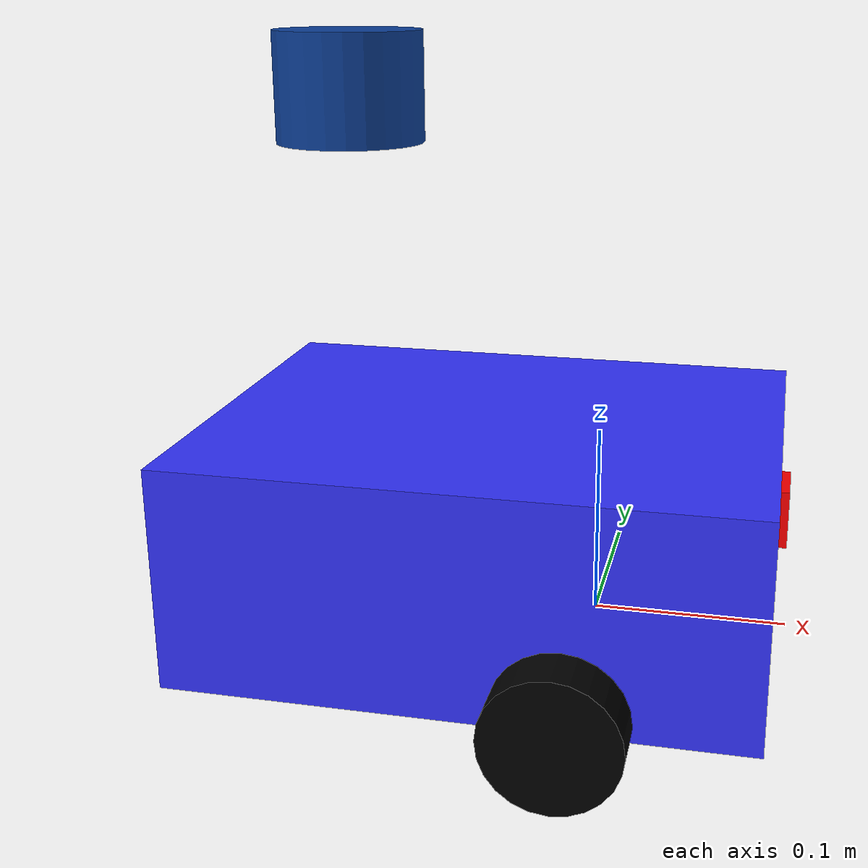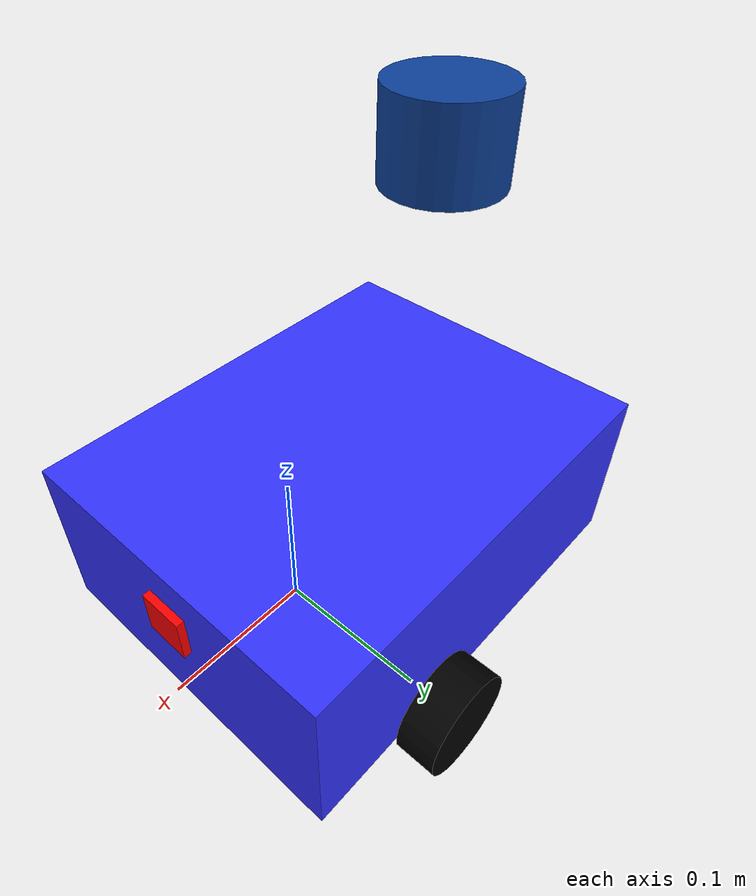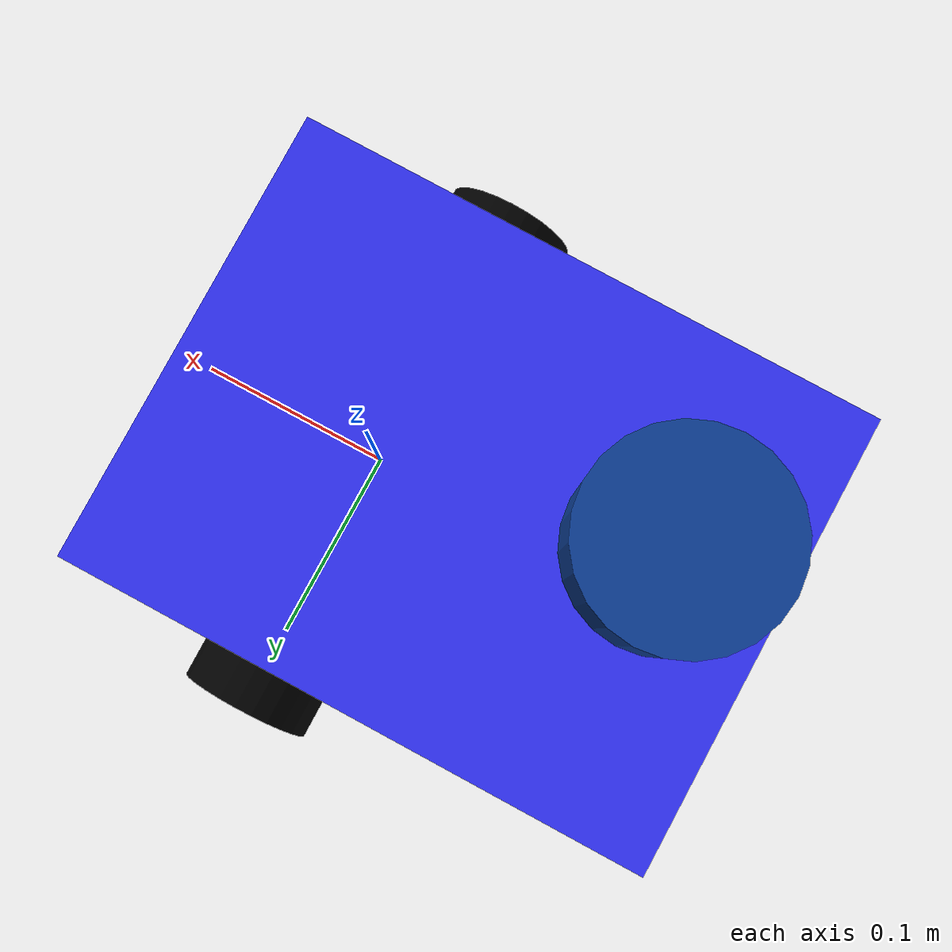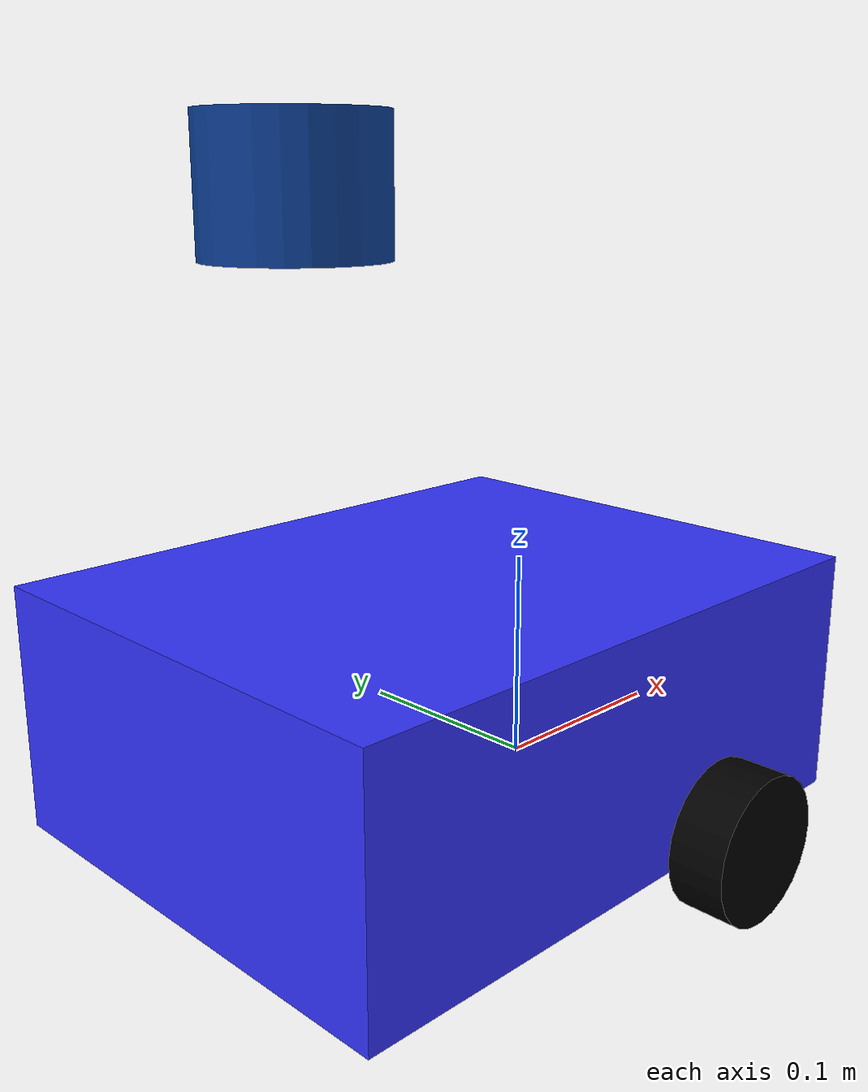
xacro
<?xml version="1.0"?>
<robot xmlns:xacro="http://www.ros.org/wiki/xacro"  name="robot">

   <xacro:arg name="use_ros2_control" default="true"/>
   <xacro:arg name="sim_mode" default="false"/>

   <xacro:include filename="robot_core.xacro" />

   <xacro:if value="$(arg use_ros2_control)">
       <xacro:include filename="ros2_control.xacro"/>
   </xacro:if>

   <xacro:unless value="$(arg use_ros2_control)">
       <xacro:include filename="gazebo_control.xacro"/>
   </xacro:unless>

   <xacro:include filename="lidar.xacro"/>

   <xacro:include filename="depth_camera.xacro"/>

</robot>

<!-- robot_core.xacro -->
<robot xmlns:xacro="http://www.ros.org/wiki/xacro" >

    <xacro:include filename="inertial_macros.xacro"/>

    <xacro:property name="chassis_length" value="0.293"/>
    <xacro:property name="chassis_width" value="0.228"/>
    <xacro:property name="chassis_height" value="0.115"/>
    <xacro:property name="chassis_mass" value="1.0"/>
    <xacro:property name="wheel_radius" value="0.034"/>
    <xacro:property name="wheel_thickness" value="0.026"/>
    <xacro:property name="wheel_mass" value="0.05"/>
    <xacro:property name="wheel_offset_x" value="0.2"/>
    <xacro:property name="wheel_offset_y" value="0.13"/>
    <xacro:property name="wheel_offset_z" value="0.01"/>
    <xacro:property name="caster_wheel_radius" value="0.018"/>
    <xacro:property name="caster_wheel_mass" value="0.01"/>
    <xacro:property name="caster_wheel_offset_x" value="0.05"/>
    <xacro:property name="caster_wheel_offset_z" value="${wheel_offset_z - wheel_radius + caster_wheel_radius}"/>

    <material name="white">
        <color rgba="1 1 1 1" />
    </material>

    <material name="orange">
        <color rgba="1 0.3 0.1 1"/>
    </material>

    <material name="blue">
        <color rgba="0.2 0.2 1 1"/>
    </material>

    <material name="black">
        <color rgba="0 0 0 1"/>
    </material>

    <material name="red">
        <color rgba="1 0 0 1"/>
    </material>

    <!-- BASE LINK -->

    <link name="base_link">

    </link>

    <!-- BASE_FOOTPRINT LINK -->

    <joint name="base_footprint_joint" type="fixed">
        <parent link="base_link"/>
        <child link="base_footprint"/>
        <origin xyz="0 0 0" rpy="0 0 0"/>
    </joint>

    <link name="base_footprint">
    </link>

    <!-- CHASSIS LINK -->

    <joint name="chassis_joint" type="fixed">
        <parent link="base_link"/>
        <child link="chassis"/>
        <origin xyz="${-wheel_offset_x} 0 ${-wheel_offset_z}"/>
    </joint>

    <link name="chassis">
        <visual>
            <origin xyz="${chassis_length/2} 0 ${chassis_height/2}"/>
            <geometry>
                <box size="${chassis_length} ${chassis_width} ${chassis_height}"/>
            </geometry>
            <material name="blue"/>
        </visual>
        <collision>
            <origin xyz="${chassis_length/2} 0 ${chassis_height/2}"/>
            <geometry>
                <box size="${chassis_length} ${chassis_width} ${chassis_height}"/>
            </geometry>
        </collision>
        <xacro:inertial_box mass="0.5" x="${chassis_length}" y="${chassis_width}" z="${chassis_height}">
            <origin xyz="${chassis_length/2} 0 ${chassis_height/2}" rpy="0 0 0"/>
        </xacro:inertial_box>
    </link>

    <gazebo reference="chassis">
        <material>Gazebo/Blue</material>
    </gazebo>

    <!-- LEFT WHEEL LINK -->

    <joint name="left_wheel_joint" type="continuous">
        <parent link="base_link"/>
        <child link="left_wheel"/>
        <origin xyz="0 ${wheel_offset_y} 0" rpy="-${pi/2} 0 0" />
        <axis xyz="0 0 1"/>
    </joint>

    <link name="left_wheel">
        <visual>
            <geometry>
                <cylinder radius="${wheel_radius}" length="${wheel_thickness}"/>
            </geometry>
            <material name="black"/>
        </visual>
        <collision>
            <geometry>
                <sphere radius="${wheel_radius}"/>
            </geometry>
        </collision>
        <xacro:inertial_cylinder mass="${wheel_mass}" length="${wheel_thickness}" radius="${wheel_radius}">
            <origin xyz="0 0 0" rpy="0 0 0"/>
        </xacro:inertial_cylinder>
    </link>

    <gazebo reference="left_wheel">
        <material>Gazebo/Black</material>
    </gazebo>

    <!-- RIGHT WHEEL LINK -->

    <joint name="right_wheel_joint" type="continuous">
        <parent link="base_link"/>
        <child link="right_wheel"/>
        <origin xyz="0 ${-wheel_offset_y} 0" rpy="${pi/2} 0 0" />
        <axis xyz="0 0 -1"/>
    </joint>

    <link name="right_wheel">
        <visual>
            <geometry>
                <cylinder radius="${wheel_radius}" length="${wheel_thickness}"/>
            </geometry>
            <material name="black"/>
        </visual>
        <collision>
            <geometry>
                <sphere radius="${wheel_radius}"/>
            </geometry>
        </collision>
        <xacro:inertial_cylinder mass="${wheel_mass}" length="${wheel_thickness}" radius="${wheel_radius}">
            <origin xyz="0 0 0" rpy="0 0 0"/>
        </xacro:inertial_cylinder>
    </link>

    <gazebo reference="right_wheel">
        <material>Gazebo/Black</material>
    </gazebo>

    <!-- CASTER WHEEL LINK -->

    <joint name="caster_wheel_joint" type="fixed">
        <parent link="chassis"/>
        <child link="caster_wheel"/>
        <origin xyz="${caster_wheel_offset_x} 0 ${caster_wheel_offset_z}"/>
    </joint>

    <link name="caster_wheel">
        <visual>
            <geometry>
                <sphere radius="${caster_wheel_radius}"/>
            </geometry>
            <material name="black"/>
        </visual>
        <collision>
            <geometry>
                <sphere radius="${caster_wheel_radius}"/>
            </geometry>
        </collision>
        <xacro:inertial_sphere mass="${caster_wheel_mass}" radius="${caster_wheel_radius}">
            <origin xyz="0 0 0" rpy="0 0 0"/>
        </xacro:inertial_sphere>
    </link>

    <gazebo reference="caster_wheel">
        <material>Gazebo/Black</material>
        <mu1 value="0.001"/>
        <mu2 value="0.001"/>
    </gazebo>

</robot>

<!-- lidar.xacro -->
<robot xmlns:xacro="http://www.ros.org/wiki/xacro">

  <xacro:property name="lidar_x"      value="-0.13"/>
  <xacro:property name="lidar_y"      value="0.0"/>
  <xacro:property name="lidar_z"      value="0.30"/>   <!-- scan plane height -->
  <xacro:property name="lidar_radius" value="0.0375"/> <!-- 7.5 cm diameter puck -->
  <xacro:property name="lidar_height" value="0.055"/>
  <xacro:property name="lidar_mass"   value="0.19"/>

  <material name="lidar_blue"><color rgba="0.05 0.25 0.6 1"/></material>

  <joint name="lidar_joint" type="fixed">
    <parent link="base_link"/>
    <child  link="lidar_link"/>
    <origin xyz="${lidar_x} ${lidar_y} ${lidar_z}" rpy="0 0 0"/>
  </joint>

  <link name="lidar_link">
    <visual>
      <origin xyz="0 0 ${-lidar_height/2}" rpy="0 0 0"/>
      <geometry>
        <cylinder radius="${lidar_radius}" length="${lidar_height}"/>
      </geometry>
      <material name="lidar_blue"/>
    </visual>
    <collision>
      <origin xyz="0 0 ${-lidar_height/2}" rpy="0 0 0"/>
      <geometry>
        <cylinder radius="${lidar_radius}" length="${lidar_height}"/>
      </geometry>
    </collision>
    <xacro:inertial_cylinder mass="${lidar_mass}"
                             length="${lidar_height}" radius="${lidar_radius}">
      <origin xyz="0 0 ${-lidar_height/2}" rpy="0 0 0"/>
    </xacro:inertial_cylinder>
  </link>

</robot>

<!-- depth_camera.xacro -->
<robot xmlns:xacro="http://www.ros.org/wiki/xacro" >

    <joint name="camera_joint" type="fixed">
        <parent link="chassis"/>
        <child link="camera_link"/>
        <origin xyz="${chassis_length} 0 ${chassis_height * 0.65}" rpy="0 0 0"/>
    </joint>

    <link name="camera_link">
        <visual>
            <geometry>
                <box size="0.010 0.03 0.03"/>
            </geometry>
            <material name="red"/>
        </visual>
    </link>

    <joint name="camera_optical_joint" type="fixed">
        <parent link="camera_link"/>
        <child link="camera_link_optical"/>
        <origin xyz="0 0 0" rpy="${-pi/2} 0 ${-pi/2}"/>
    </joint>

    <link name="camera_link_optical"></link>

    <gazebo reference="camera_link">
        <material>Gazebo/Red</material>

        <sensor name="rgbd_camera" type="rgbd_camera">
            <pose>0 0 0 0 0 0</pose>
            <visualize>true</visualize>
            <update_rate>5</update_rate>
            <camera>
                <camera_info_topic>camera/camera_info</camera_info_topic>
                <horizontal_fov>1.089</horizontal_fov>
                <image>
                    <format>R8G8B8</format>
                    <width>320</width>
                    <height>240</height>
                </image>
                <clip>
                    <near>0.1</near>
                    <far>8.0</far>
                </clip>
                <depth_camera>
                    <clip>
                        <near>0.1</near>
                        <far>8.0</far>
                    </clip>
                </depth_camera>
            </camera>
            <topic>camera</topic>
            <gz_frame_id>camera_link_optical</gz_frame_id>
        </sensor>
    </gazebo>

</robot>
